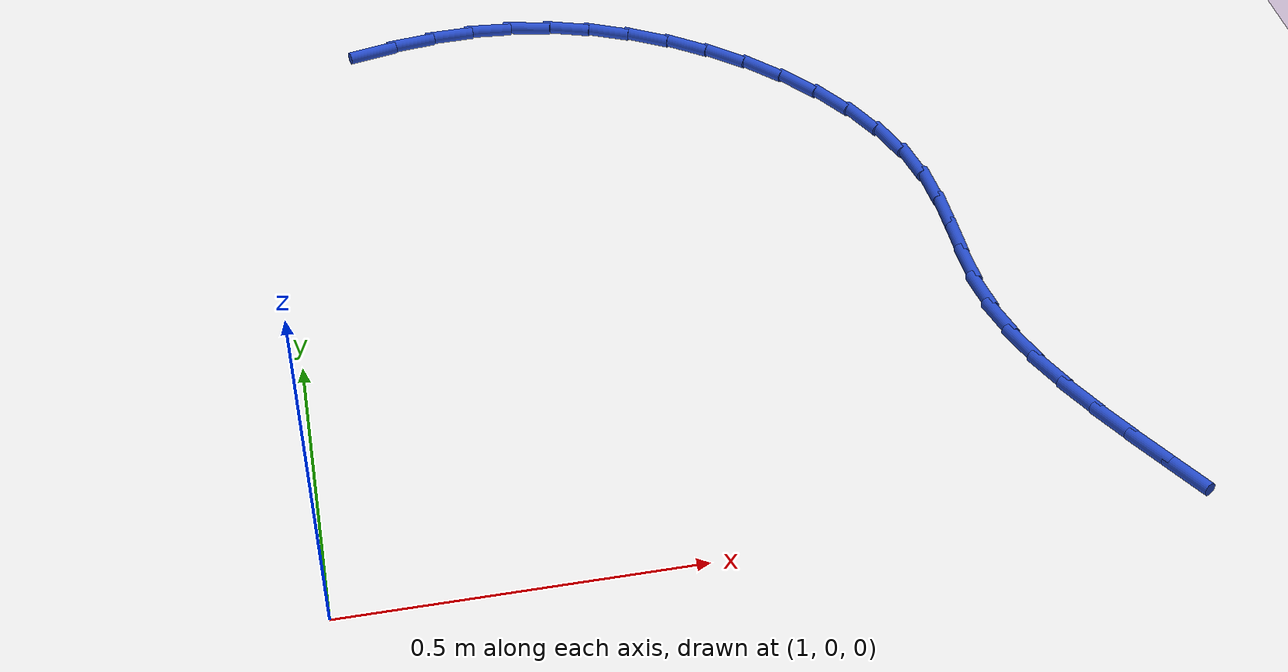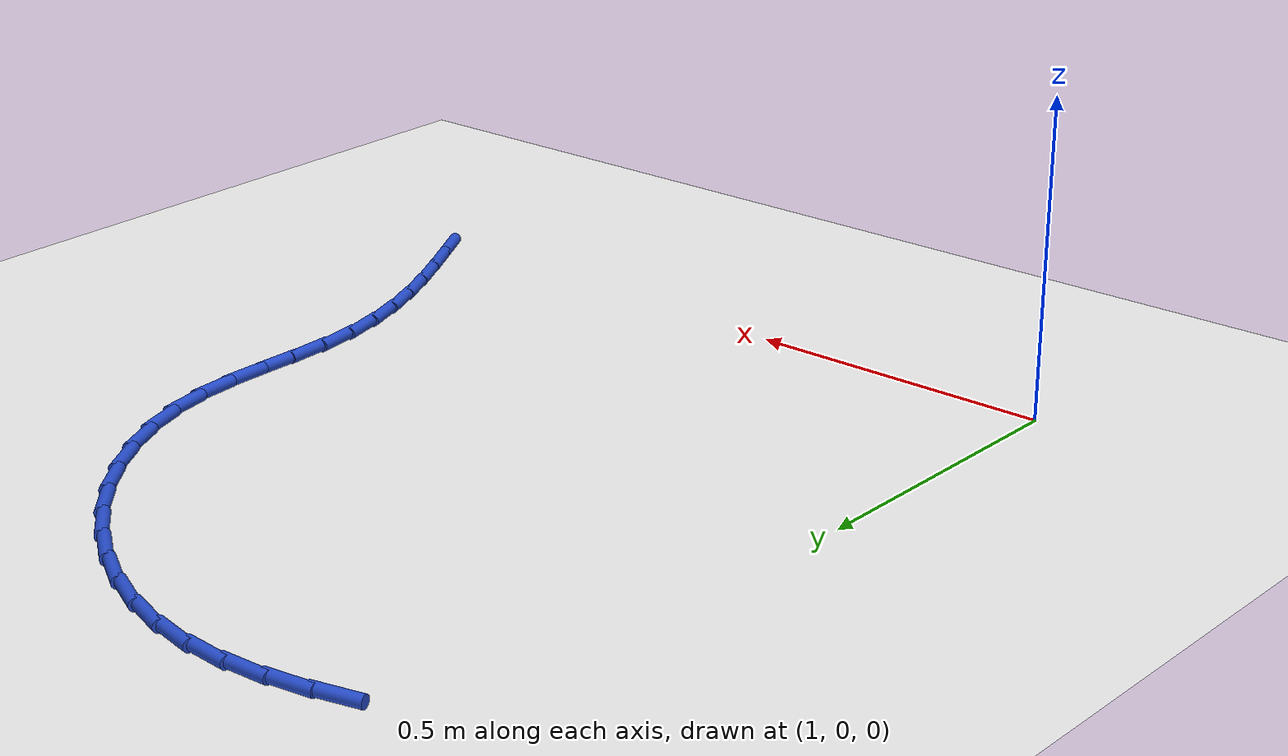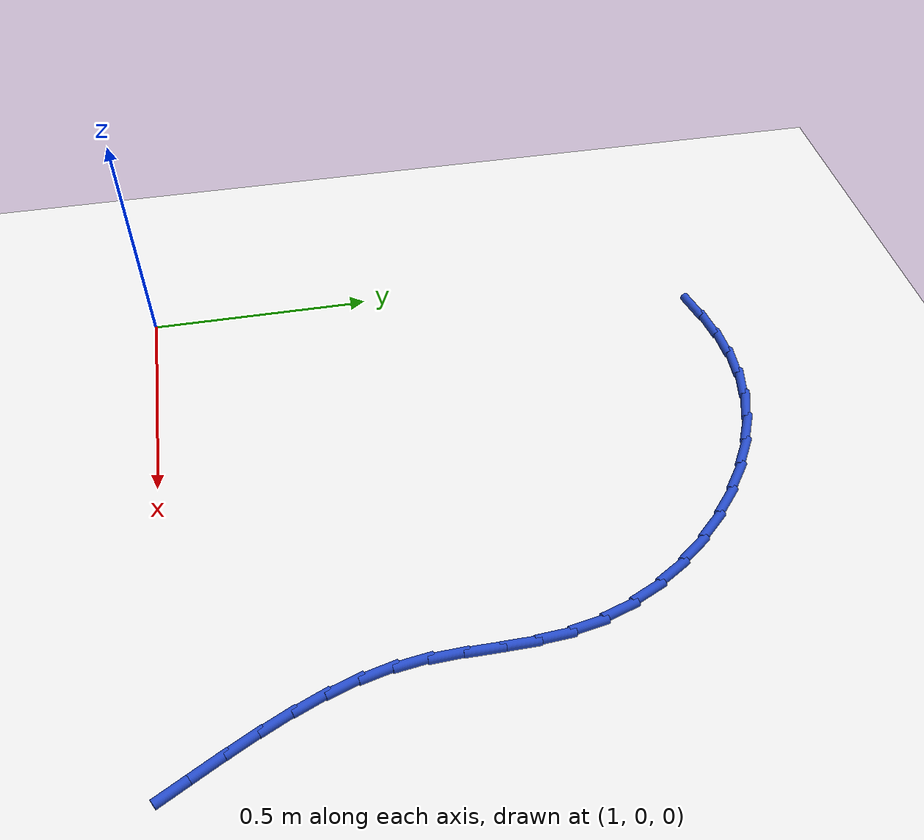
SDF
<sdf version="1.6">
 <world name="default">
  <model name="ground_plane">
   <static>1</static>
   <link name="link">
    <collision name="collision">
     <geometry><plane><normal>0 0 1</normal><size>100 100</size></plane></geometry>
     <surface><friction><ode><mu>100</mu><mu2>50</mu2></ode></friction></surface>
    </collision>
    <visual name="visual">
     <cast_shadows>0</cast_shadows>
     <geometry><plane><normal>0 0 1</normal><size>100 100</size></plane></geometry>
     <material>
      <script><uri>file://media/materials/scripts/gazebo.material</uri><name>Gazebo/WhiteGlow</name></script>
     </material>
    </visual>
   </link>
  </model>
  <model name="line">
   <link name="link_27">
    <pose>1.172185224253484 1.2802897227187529 0.01 0 1.57 0.23899631637485294</pose>
    <collision name="collision">
     <geometry><cylinder><radius>0.01</radius><length>0.08</length></cylinder></geometry>
    </collision>
    <visual name="visual">
     <material>
      <script><name>Gazebo/Blue</name><uri>file://media/materials/scripts/gazebo.material</uri></script>
     </material>
     <geometry><cylinder><radius>0.01</radius><length>0.08</length></cylinder></geometry>
    </visual>
   </link>
   <link name="link_28">
    <pose>1.2380552614846152 1.2963391663017554 0.01 0 1.57 0.14739718019107623</pose>
    <collision name="collision">
     <geometry><cylinder><radius>0.01</radius><length>0.08</length></cylinder></geometry>
    </collision>
    <visual name="visual">
     <material>
      <script><name>Gazebo/Blue</name><uri>file://media/materials/scripts/gazebo.material</uri></script>
     </material>
     <geometry><cylinder><radius>0.01</radius><length>0.08</length></cylinder></geometry>
    </visual>
   </link>
   <link name="link_29">
    <pose>1.3042315435076786 1.3061646226643584 0.01 0 1.57 0.039020702237178496</pose>
    <collision name="collision">
     <geometry><cylinder><radius>0.01</radius><length>0.08</length></cylinder></geometry>
    </collision>
    <visual name="visual">
     <material>
      <script><name>Gazebo/Blue</name><uri>file://media/materials/scripts/gazebo.material</uri></script>
     </material>
     <geometry><cylinder><radius>0.01</radius><length>0.08</length></cylinder></geometry>
    </visual>
   </link>
   <link name="link_30">
    <pose>1.3706082366589616 1.3087560032019625 0.01 0 1.57 -0.08483688875926769</pose>
    <collision name="collision">
     <geometry><cylinder><radius>0.01</radius><length>0.08</length></cylinder></geometry>
    </collision>
    <visual name="visual">
     <material>
      <script><name>Gazebo/Blue</name><uri>file://media/materials/scripts/gazebo.material</uri></script>
     </material>
     <geometry><cylinder><radius>0.01</radius><length>0.08</length></cylinder></geometry>
    </visual>
   </link>
   <link name="link_31">
    <pose>1.4370795072747535 1.3031032193099692 0.01 0 1.57 -0.2169362189915135</pose>
    <collision name="collision">
     <geometry><cylinder><radius>0.01</radius><length>0.08</length></cylinder></geometry>
    </collision>
    <visual name="visual">
     <material>
      <script><name>Gazebo/Blue</name><uri>file://media/materials/scripts/gazebo.material</uri></script>
     </material>
     <geometry><cylinder><radius>0.01</radius><length>0.08</length></cylinder></geometry>
    </visual>
   </link>
   <link name="link_32">
    <pose>1.5034225020397143 1.2884809163194746 0.01 0 1.57 -0.3396391343239429</pose>
    <collision name="collision">
     <geometry><cylinder><radius>0.01</radius><length>0.08</length></cylinder></geometry>
    </collision>
    <visual name="visual">
     <material>
      <script><name>Gazebo/Blue</name><uri>file://media/materials/scripts/gazebo.material</uri></script>
     </material>
     <geometry><cylinder><radius>0.01</radius><length>0.08</length></cylinder></geometry>
    </visual>
   </link>
   <link name="link_33">
    <pose>1.5689334701485567 1.2653338663998706 0.01 0 1.57 -0.45104844751495005</pose>
    <collision name="collision">
     <geometry><cylinder><radius>0.01</radius><length>0.08</length></cylinder></geometry>
    </collision>
    <visual name="visual">
     <material>
      <script><name>Gazebo/Blue</name><uri>file://media/materials/scripts/gazebo.material</uri></script>
     </material>
     <geometry><cylinder><radius>0.01</radius><length>0.08</length></cylinder></geometry>
    </visual>
   </link>
   <link name="link_34">
    <pose>1.6327851444235832 1.234407383572706 0.01 0 1.57 -0.5539855041685807</pose>
    <collision name="collision">
     <geometry><cylinder><radius>0.01</radius><length>0.08</length></cylinder></geometry>
    </collision>
    <visual name="visual">
     <material>
      <script><name>Gazebo/Blue</name><uri>file://media/materials/scripts/gazebo.material</uri></script>
     </material>
     <geometry><cylinder><radius>0.01</radius><length>0.08</length></cylinder></geometry>
    </visual>
   </link>
   <link name="link_35">
    <pose>1.6941502575992806 1.1964467820732039 0.01 0 1.57 -0.6512930956472065</pose>
    <collision name="collision">
     <geometry><cylinder><radius>0.01</radius><length>0.08</length></cylinder></geometry>
    </collision>
    <visual name="visual">
     <material>
      <script><name>Gazebo/Blue</name><uri>file://media/materials/scripts/gazebo.material</uri></script>
     </material>
     <geometry><cylinder><radius>0.01</radius><length>0.08</length></cylinder></geometry>
    </visual>
   </link>
   <link name="link_36">
    <pose>1.7522015424101356 1.1521973761365891 0.01 0 1.57 -0.7457162995117235</pose>
    <collision name="collision">
     <geometry><cylinder><radius>0.01</radius><length>0.08</length></cylinder></geometry>
    </collision>
    <visual name="visual">
     <material>
      <script><name>Gazebo/Blue</name><uri>file://media/materials/scripts/gazebo.material</uri></script>
     </material>
     <geometry><cylinder><radius>0.01</radius><length>0.08</length></cylinder></geometry>
    </visual>
   </link>
   <link name="link_37">
    <pose>1.806111731590635 1.1024044799980846 0.01 0 1.57 -0.839908849197886</pose>
    <collision name="collision">
     <geometry><cylinder><radius>0.01</radius><length>0.08</length></cylinder></geometry>
    </collision>
    <visual name="visual">
     <material>
      <script><name>Gazebo/Blue</name><uri>file://media/materials/scripts/gazebo.material</uri></script>
     </material>
     <geometry><cylinder><radius>0.01</radius><length>0.08</length></cylinder></geometry>
    </visual>
   </link>
   <link name="link_38">
    <pose>1.8550535578752645 1.047813407892914 0.01 0 1.57 -0.936489698770688</pose>
    <collision name="collision">
     <geometry><cylinder><radius>0.01</radius><length>0.08</length></cylinder></geometry>
    </collision>
    <visual name="visual">
     <material>
      <script><name>Gazebo/Blue</name><uri>file://media/materials/scripts/gazebo.material</uri></script>
     </material>
     <geometry><cylinder><radius>0.01</radius><length>0.08</length></cylinder></geometry>
    </visual>
   </link>
   <link name="link_39">
    <pose>1.8981997539985118 0.9891694740563015 0.01 0 1.57 -1.038098446706596</pose>
    <collision name="collision">
     <geometry><cylinder><radius>0.01</radius><length>0.08</length></cylinder></geometry>
    </collision>
    <visual name="visual">
     <material>
      <script><name>Gazebo/Blue</name><uri>file://media/materials/scripts/gazebo.material</uri></script>
     </material>
     <geometry><cylinder><radius>0.01</radius><length>0.08</length></cylinder></geometry>
    </visual>
   </link>
   <link name="link_40">
    <pose>1.9347230526948629 0.9272179927234708 0.01 0 1.57 -1.1474016241438278</pose>
    <collision name="collision">
     <geometry><cylinder><radius>0.01</radius><length>0.08</length></cylinder></geometry>
    </collision>
    <visual name="visual">
     <material>
      <script><name>Gazebo/Blue</name><uri>file://media/materials/scripts/gazebo.material</uri></script>
     </material>
     <geometry><cylinder><radius>0.01</radius><length>0.08</length></cylinder></geometry>
    </visual>
   </link>
   <link name="link_41">
    <pose>1.963796186698804 0.862704278129646 0.01 0 1.57 -1.2669862946540746</pose>
    <collision name="collision">
     <geometry><cylinder><radius>0.01</radius><length>0.08</length></cylinder></geometry>
    </collision>
    <visual name="visual">
     <material>
      <script><name>Gazebo/Blue</name><uri>file://media/materials/scripts/gazebo.material</uri></script>
     </material>
     <geometry><cylinder><radius>0.01</radius><length>0.08</length></cylinder></geometry>
    </visual>
   </link>
   <link name="link_42">
    <pose>1.984591888744823 0.7963736445100504 0.01 0 1.57 -1.3976396671027578</pose>
    <collision name="collision">
     <geometry><cylinder><radius>0.01</radius><length>0.08</length></cylinder></geometry>
    </collision>
    <visual name="visual">
     <material>
      <script><name>Gazebo/Blue</name><uri>file://media/materials/scripts/gazebo.material</uri></script>
     </material>
     <geometry><cylinder><radius>0.01</radius><length>0.08</length></cylinder></geometry>
    </visual>
   </link>
   <link name="link_43">
    <pose>1.9963821589840391 0.7289653377578442 0.01 0 1.57 -1.5090232813438034</pose>
    <collision name="collision">
     <geometry><cylinder><radius>0.01</radius><length>0.08</length></cylinder></geometry>
    </collision>
    <visual name="visual">
     <material>
      <script><name>Gazebo/Blue</name><uri>file://media/materials/scripts/gazebo.material</uri></script>
     </material>
     <geometry><cylinder><radius>0.01</radius><length>0.08</length></cylinder></geometry>
    </visual>
   </link>
   <link name="link_44">
    <pose>2.0005805095102094 0.6610876904469852 0.01 0 1.57 -1.5695349587395926</pose>
    <collision name="collision">
     <geometry><cylinder><radius>0.01</radius><length>0.08</length></cylinder></geometry>
    </collision>
    <visual name="visual">
     <material>
      <script><name>Gazebo/Blue</name><uri>file://media/materials/scripts/gazebo.material</uri></script>
     </material>
     <geometry><cylinder><radius>0.01</radius><length>0.08</length></cylinder></geometry>
    </visual>
   </link>
   <link name="link_45">
    <pose>2.0006661122125022 0.5932227587694137 0.01 0 1.57 1.5639113838336118</pose>
    <collision name="collision">
     <geometry><cylinder><radius>0.01</radius><length>0.08</length></cylinder></geometry>
    </collision>
    <visual name="visual">
     <material>
      <script><name>Gazebo/Blue</name><uri>file://media/materials/scripts/gazebo.material</uri></script>
     </material>
     <geometry><cylinder><radius>0.01</radius><length>0.08</length></cylinder></geometry>
    </visual>
   </link>
   <link name="link_46">
    <pose>2.000202229782307 0.5258474583405385 0.01 0 1.57 -1.5324182068579226</pose>
    <collision name="collision">
     <geometry><cylinder><radius>0.01</radius><length>0.08</length></cylinder></geometry>
    </collision>
    <visual name="visual">
     <material>
      <script><name>Gazebo/Blue</name><uri>file://media/materials/scripts/gazebo.material</uri></script>
     </material>
     <geometry><cylinder><radius>0.01</radius><length>0.08</length></cylinder></geometry>
    </visual>
   </link>
   <link name="link_47">
    <pose>2.002752124911013 0.459438704775769 0.01 0 1.57 -1.4357087737764582</pose>
    <collision name="collision">
     <geometry><cylinder><radius>0.01</radius><length>0.08</length></cylinder></geometry>
    </collision>
    <visual name="visual">
     <material>
      <script><name>Gazebo/Blue</name><uri>file://media/materials/scripts/gazebo.material</uri></script>
     </material>
     <geometry><cylinder><radius>0.01</radius><length>0.08</length></cylinder></geometry>
    </visual>
   </link>
   <link name="link_48">
    <pose>2.0115881710968133 0.3944272965652049 0.01 0 1.57 -1.3303904333834935</pose>
    <collision name="collision">
     <geometry><cylinder><radius>0.01</radius><length>0.08</length></cylinder></geometry>
    </collision>
    <visual name="visual">
     <material>
      <script><name>Gazebo/Blue</name><uri>file://media/materials/scripts/gazebo.material</uri></script>
     </material>
     <geometry><cylinder><radius>0.01</radius><length>0.08</length></cylinder></geometry>
    </visual>
   </link>
   <link name="link_49">
    <pose>2.0271860494784466 0.3308006488935164 0.01 0 1.57 -1.2427108652474843</pose>
    <collision name="collision">
     <geometry><cylinder><radius>0.01</radius><length>0.08</length></cylinder></geometry>
    </collision>
    <visual name="visual">
     <material>
      <script><name>Gazebo/Blue</name><uri>file://media/materials/scripts/gazebo.material</uri></script>
     </material>
     <geometry><cylinder><radius>0.01</radius><length>0.08</length></cylinder></geometry>
    </visual>
   </link>
   <link name="link_50">
    <pose>2.0484608837908973 0.2682987685746784 0.01 0 1.57 -1.1737030541392492</pose>
    <collision name="collision">
     <geometry><cylinder><radius>0.01</radius><length>0.08</length></cylinder></geometry>
    </collision>
    <visual name="visual">
     <material>
      <script><name>Gazebo/Blue</name><uri>file://media/materials/scripts/gazebo.material</uri></script>
     </material>
     <geometry><cylinder><radius>0.01</radius><length>0.08</length></cylinder></geometry>
    </visual>
   </link>
   <link name="link_51">
    <pose>2.0743108326219795 0.20665897279432494 0.01 0 1.57 -1.122959069893517</pose>
    <collision name="collision">
     <geometry><cylinder><radius>0.01</radius><length>0.08</length></cylinder></geometry>
    </collision>
    <visual name="visual">
     <material>
      <script><name>Gazebo/Blue</name><uri>file://media/materials/scripts/gazebo.material</uri></script>
     </material>
     <geometry><cylinder><radius>0.01</radius><length>0.08</length></cylinder></geometry>
    </visual>
   </link>
   <link name="link_52">
    <pose>2.1036340545595063 0.14561857873809037 0.01 0 1.57 -1.0896090603085182</pose>
    <collision name="collision">
     <geometry><cylinder><radius>0.01</radius><length>0.08</length></cylinder></geometry>
    </collision>
    <visual name="visual">
     <material>
      <script><name>Gazebo/Blue</name><uri>file://media/materials/scripts/gazebo.material</uri></script>
     </material>
     <geometry><cylinder><radius>0.01</radius><length>0.08</length></cylinder></geometry>
    </visual>
   </link>
   <link name="link_53">
    <pose>2.1353287081912935 0.08491490359160893 0.01 0 1.57 -1.072803988105403</pose>
    <collision name="collision">
     <geometry><cylinder><radius>0.01</radius><length>0.08</length></cylinder></geometry>
    </collision>
    <visual name="visual">
     <material>
      <script><name>Gazebo/Blue</name><uri>file://media/materials/scripts/gazebo.material</uri></script>
     </material>
     <geometry><cylinder><radius>0.01</radius><length>0.08</length></cylinder></geometry>
    </visual>
   </link>
   <link name="link_54">
    <pose>2.168292952105155 0.024285264540514825 0.01 0 1.57 -1.0719771432533287</pose>
    <collision name="collision">
     <geometry><cylinder><radius>0.01</radius><length>0.08</length></cylinder></geometry>
    </collision>
    <visual name="visual">
     <material>
      <script><name>Gazebo/Blue</name><uri>file://media/materials/scripts/gazebo.material</uri></script>
     </material>
     <geometry><cylinder><radius>0.01</radius><length>0.08</length></cylinder></geometry>
    </visual>
   </link>
  </model>
 </world>
</sdf>
